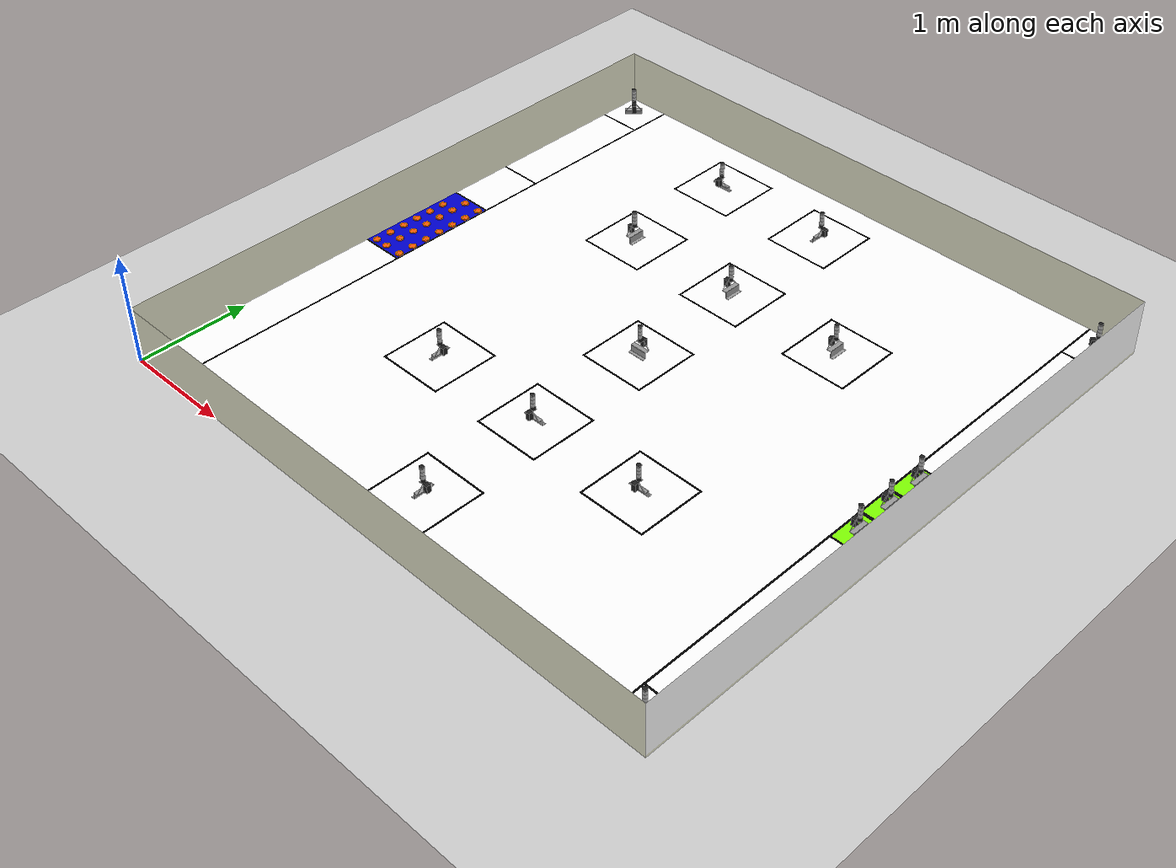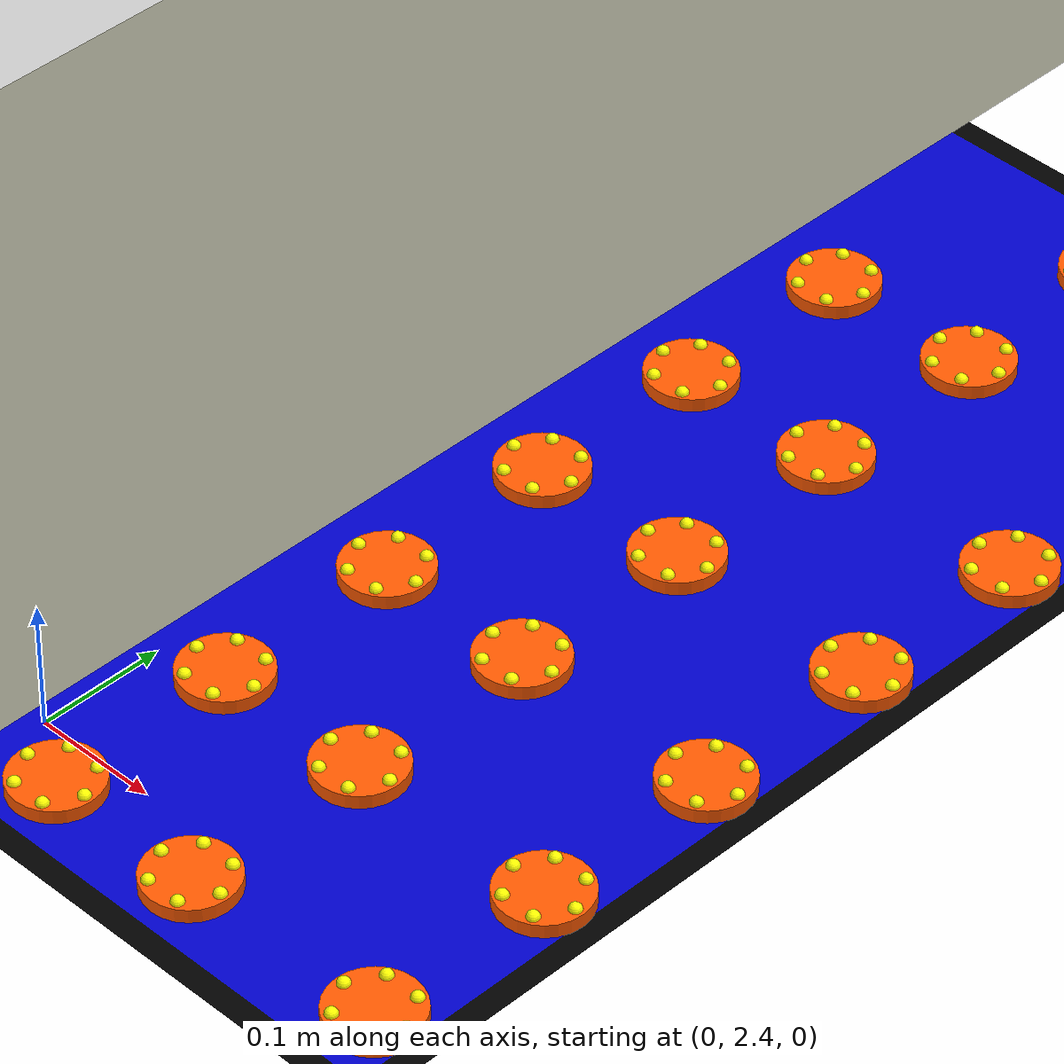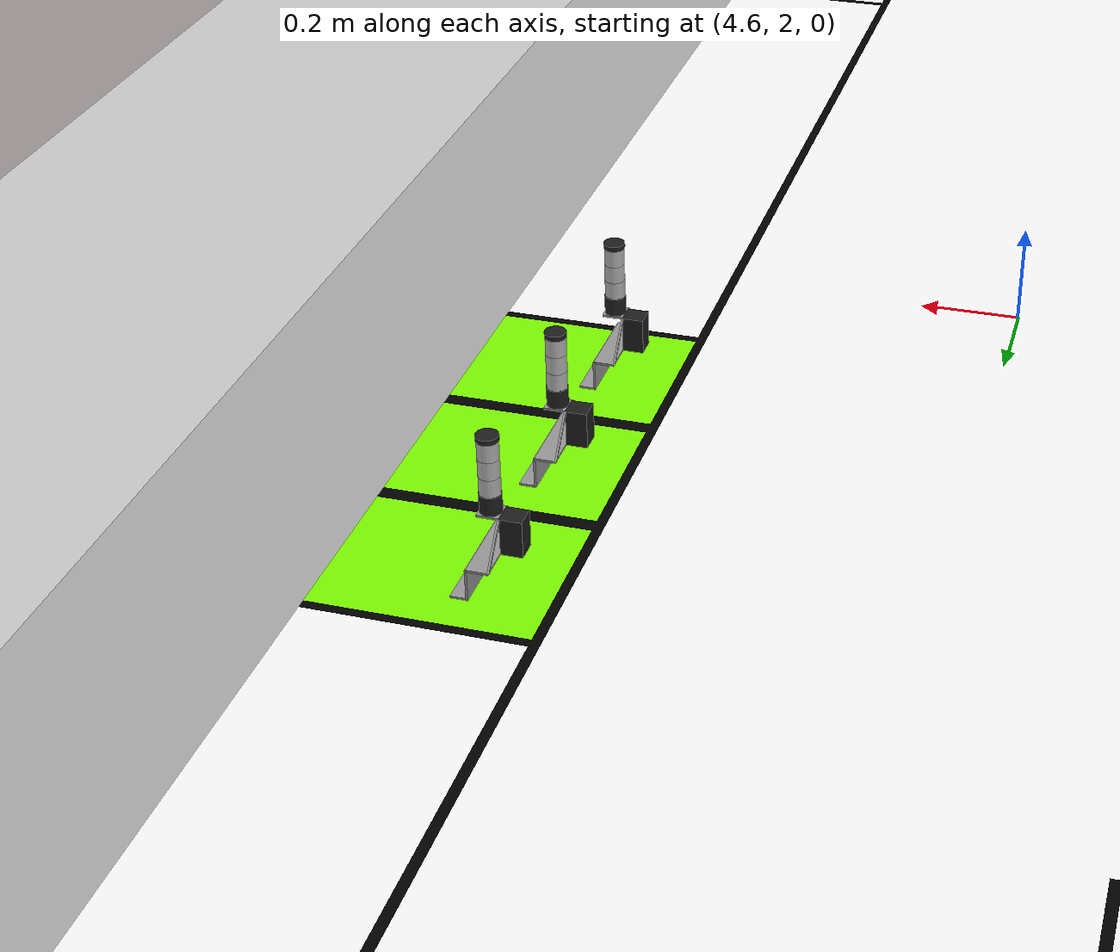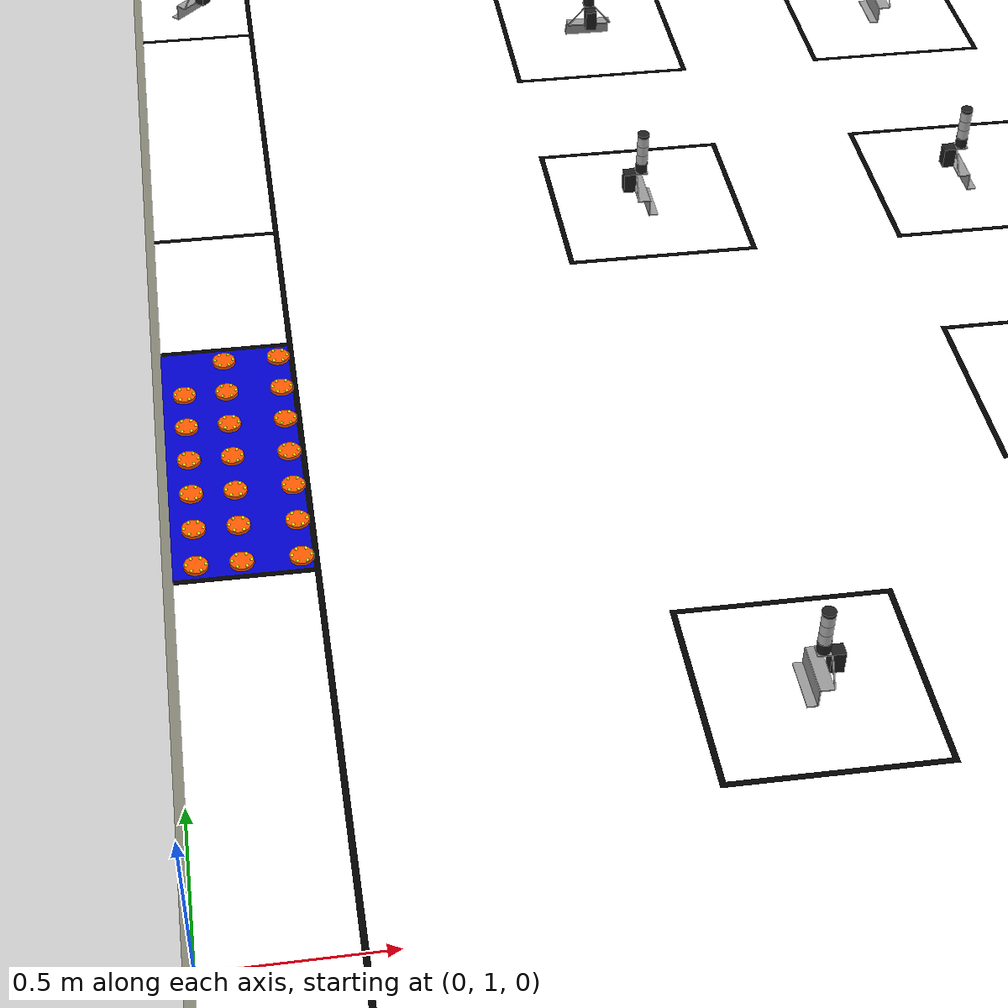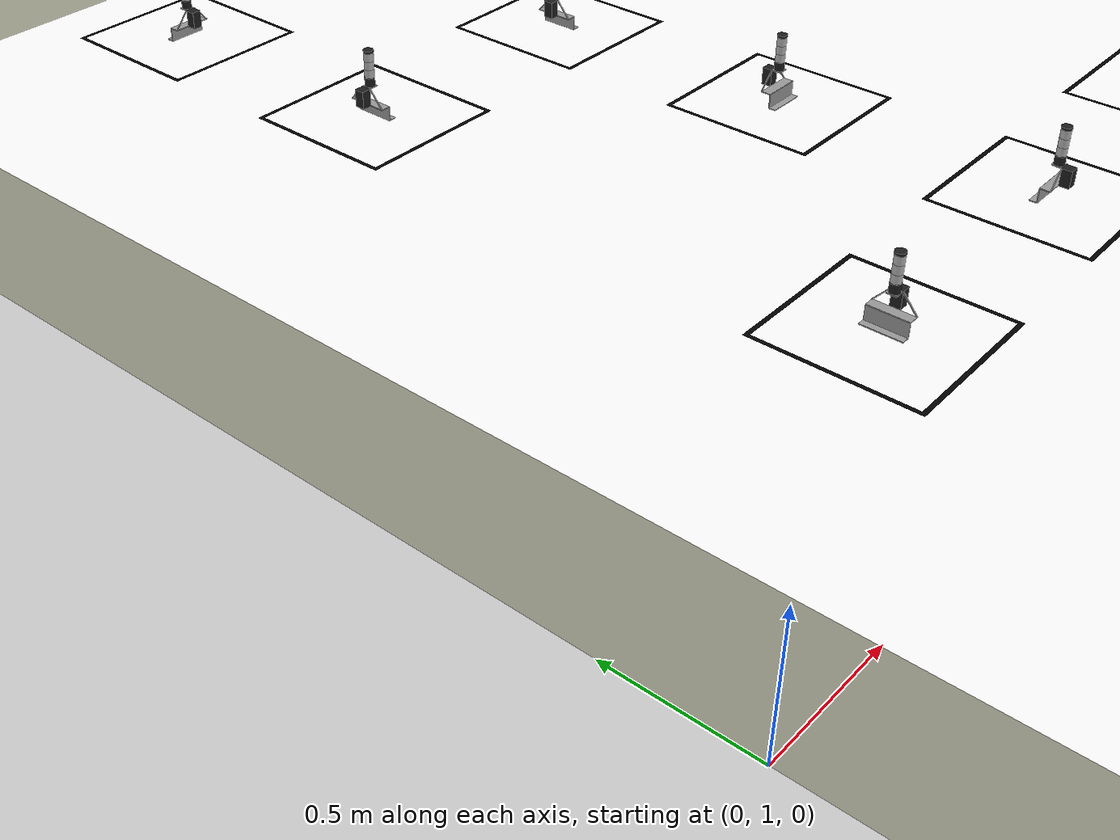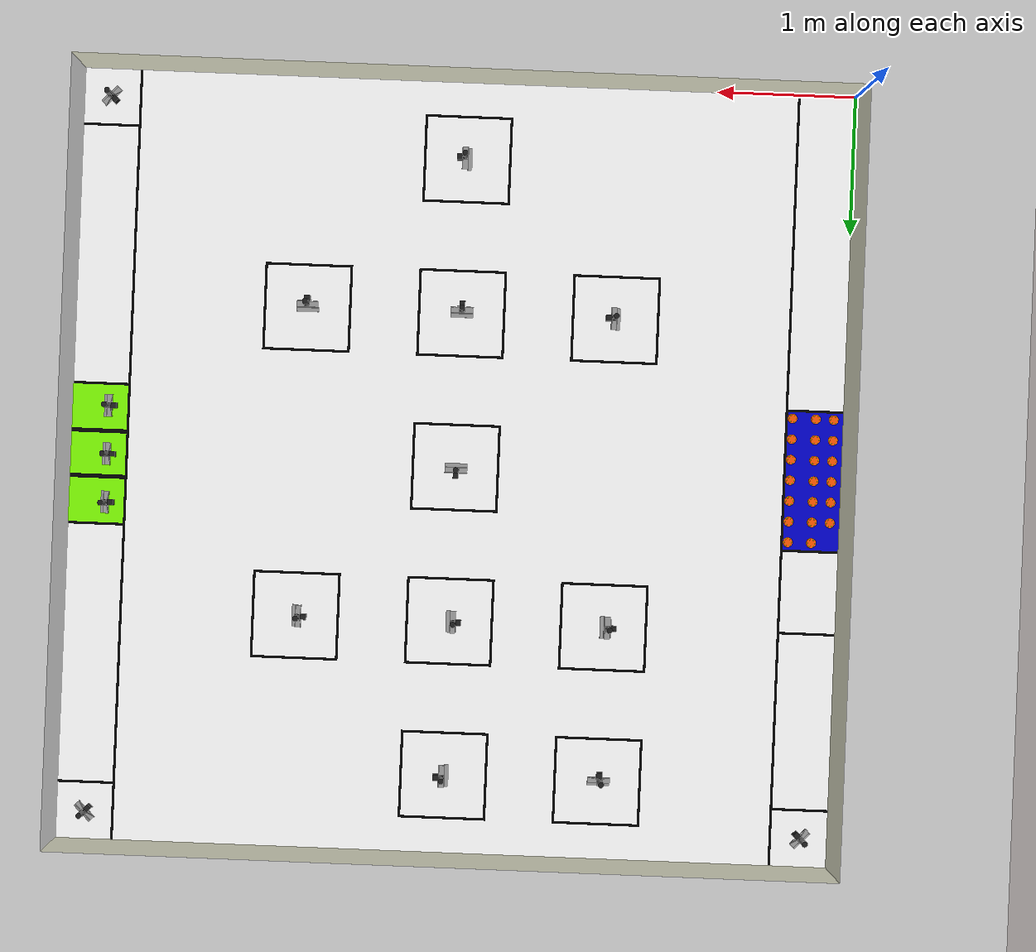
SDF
<sdf version="1.4">
 <world name="LLSF">
  <physics type="ode">
   <max_step_size>0.0015</max_step_size>
   <real_time_factor>1</real_time_factor>
   <real_time_update_rate>750</real_time_update_rate>
  </physics>
  <include><uri>model://ground_plane</uri></include>
  <include><uri>model://sun</uri></include>
  <include><uri>model://llsf_field_2013</uri></include>
  <include><name>Puck0</name><uri>model://puck</uri><pose>0.37 2.35 0 0 0 0</pose></include>
  <include><name>Puck1</name><uri>model://puck</uri><pose>0.37 2.50 0 0 0 0</pose></include>
  <include><name>Puck2</name><uri>model://puck</uri><pose>0.37 2.65 0 0 0 0</pose></include>
  <include><name>Puck3</name><uri>model://puck</uri><pose>0.37 2.80 0 0 0 0</pose></include>
  <include><name>Puck4</name><uri>model://puck</uri><pose>0.37 2.95 0 0 0 0</pose></include>
  <include><name>Puck5</name><uri>model://puck</uri><pose>0.37 3.10 0 0 0 0</pose></include>
  <include><name>Puck6</name><uri>model://puck</uri><pose>0.37 3.25 0 0 0 0</pose></include>
  <include><name>Puck7</name><uri>model://puck</uri><pose>0.2 2.35 0 0 0 0</pose></include>
  <include><name>Puck8</name><uri>model://puck</uri><pose>0.2 2.50 0 0 0 0</pose></include>
  <include><name>Puck9</name><uri>model://puck</uri><pose>0.2 2.65 0 0 0 0</pose></include>
  <include><name>Puck10</name><uri>model://puck</uri><pose>0.2 2.80 0 0 0 0</pose></include>
  <include><name>Puck11</name><uri>model://puck</uri><pose>0.2 2.95 0 0 0 0</pose></include>
  <include><name>Puck12</name><uri>model://puck</uri><pose>0.2 3.10 0 0 0 0</pose></include>
  <include><name>Puck13</name><uri>model://puck</uri><pose>0.2 3.25 0 0 0 0</pose></include>
  <include><name>Puck14</name><uri>model://puck</uri><pose>0.07 2.35 0 0 0 0</pose></include>
  <include><name>Puck15</name><uri>model://puck</uri><pose>0.07 2.50 0 0 0 0</pose></include>
  <include><name>Puck16</name><uri>model://puck</uri><pose>0.07 2.65 0 0 0 0</pose></include>
  <include><name>Puck17</name><uri>model://puck</uri><pose>0.07 2.80 0 0 0 0</pose></include>
  <include><name>Puck18</name><uri>model://puck</uri><pose>0.07 2.95 0 0 0 0</pose></include>
  <include><name>Puck19</name><uri>model://puck</uri><pose>0.07 3.10 0 0 0 0</pose></include>
  <plugin name="world" filename="libllsf.so"/>
 </world>
</sdf>

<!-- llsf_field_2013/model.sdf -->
<sdf version="1.4">
  <model name="llsf_field">
    <static>true</static>
    <link name="field_link">
      <visual name='visual'>
	<pose>5.6 0 0 0 0 1.57</pose>
	<geometry>
	  <mesh>
	    <uri>model://llsf_field/RobotinoFeld_leer.dae</uri>
	    <scale>1.0 1.0 1.0</scale>
	  </mesh>
	</geometry>
	<cast_shadows>false</cast_shadows>
      </visual>
      <collision name="collision_ground">
	<pose>2.8 2.8 0.01 0 0 0 </pose>
        <geometry>
          <box>
            <size>5.6 5.6 0.02</size>
          </box>
        </geometry>
        <surface>
          <friction>
            <ode>
              <mu>100</mu>
              <mu2>50</mu2>
            </ode>
          </friction>
        </surface>
      </collision>
      <collision name="collision0">
        <pose>2.8 0 0.25 0 0 0 </pose>
	<geometry>
          <box>
            <size>5.6 0.02 0.5</size>
          </box>
        </geometry>
        <surface>
          <friction>
            <ode>
              <mu>100</mu>
              <mu2>50</mu2>
            </ode>
          </friction>
        </surface>
      </collision>
      <collision name="collision1">
        <pose>0 2.8 0.25 0 0 0 </pose>
	<geometry>
          <box>
            <size>0.02 5.6 0.5</size>
          </box>
        </geometry>
        <surface>
          <friction>
            <ode>
              <mu>100</mu>
              <mu2>50</mu2>
            </ode>
          </friction>
        </surface>
      </collision>
      <collision name="collision2">
        <pose>5.6 2.8 0.25 0 0 0 </pose>
	<geometry>
          <box>
            <size>0.02 5.6 0.5</size>
          </box>
        </geometry>
        <surface>
          <friction>
            <ode>
              <mu>100</mu>
              <mu2>50</mu2>
            </ode>
          </friction>
        </surface>
      </collision>
      <collision name="collision3">
        <pose>2.8 5.6 0.25 0 0 0 </pose>
	<geometry>
          <box>
            <size>5.6 0.02 0.5</size>
          </box>
        </geometry>
        <surface>
          <friction>
            <ode>
              <mu>100</mu>
              <mu2>50</mu2>
            </ode>
          </friction>
        </surface>
      </collision>
    </link>

    <!-- Machines  -->

    <include>
      <name>M1</name>
      <uri>model://machine</uri>
      <pose>3.92 1.68 0.02 0 0 -1.57</pose>
    </include>
    <include>
      <name>M2</name>
      <uri>model://machine</uri>
      <pose>3.92 3.92 0.02 0 0 3.14</pose>
    </include>
    <include>
      <name>M3</name>
      <uri>model://machine</uri>
      <pose>2.8 0.56 0.02 0 0 0</pose>
    </include>
    <include>
      <name>M4</name>
      <uri>model://machine</uri>
      <pose>2.8 1.68 0.02 0 0 -1.57</pose>
    </include>
    <include>
      <name>M5</name>
      <uri>model://machine</uri>
      <pose>2.8 2.8 0.02 0 0 1.57</pose>
    </include>
    <include>
      <name>M6</name>
      <uri>model://machine</uri>
      <pose>2.8 3.92 0.02 0 0 3.14</pose>
    </include>
    <include>
      <name>M7</name>
      <uri>model://machine</uri>
      <pose>2.8 5.04 0.02 0 0 0</pose>
    </include>
    <include>
      <name>M8</name>
      <uri>model://machine</uri>
      <pose>1.68 1.68 0.02 0 0 0</pose>
    </include>
    <include>
      <name>M9</name>
      <uri>model://machine</uri>
      <pose>1.68 3.92 0.02 0 0 3.14</pose>
    </include>
    <include>
      <name>M10</name>
      <uri>model://machine</uri>
      <pose>1.68 5.04 0.02 0 0 -1.57</pose>
    </include>
    <include>
      <name>D1</name>
      <uri>model://machine</uri>
      <pose>5.34 3.15 0.02 0 0 3.14</pose>
    </include>
    <include>
      <name>D2</name>
      <uri>model://machine</uri>
      <pose>5.34 2.8 0.02 0 0 3.14</pose>
    </include>
    <include>
      <name>D3</name>
      <uri>model://machine</uri>
      <pose>5.34 2.45 0.02 0 0 3.14</pose>
    </include>
    <include>
      <name>R1</name>
      <uri>model://machine</uri>
      <pose>5.4 0.2 0.02 0 0 2.356</pose>
    </include>
    <include>
      <name>R2</name>
      <uri>model://machine</uri>
      <pose>0.2 5.4 0.02 0 0 -0.785</pose>
    </include>
    <include>
      <name>TST</name>
      <uri>model://machine</uri>
      <pose>5.4 5.4 0.02 0 0 -2.356</pose>
    </include>
  </model>
</sdf>

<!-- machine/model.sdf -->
<sdf version="1.4">
  <model name="machine">

    <!-- facing in x direction -->

    <static>true</static>
    <link name="machine_link">
      <collision name="ground_plate_collision">
        <pose>-0.015 0 0.002 0 0 0 </pose>
	<geometry>
          <box>
            <size>0.03 0.16 0.004</size>
          </box>
        </geometry>
      </collision>
      <visual name="ground_plate_visual">
        <pose>-0.015 0 0.002 0 0 0 </pose>
	<cast_shadows>false</cast_shadows>
        <geometry>
	  <box>
	    <size>0.03 0.16 0.004</size>
          </box>
        </geometry>
	<material>
	  <script>
	    <uri>file://media/materials/scripts/gazebo.material</uri>
	    <name>Gazebo/Grey</name>
	  </script>
	</material>
      </visual>
      <collision name="low_plate_collision">
        <pose>0 0 0.03 0 0 0 </pose>
	<geometry>
          <box>
            <size>0.004 0.16 0.06</size>
          </box>
        </geometry>
      </collision>
      <visual name="low_plate_visual">
        <pose>0 0 0.03 0 0 0 </pose>
	<cast_shadows>false</cast_shadows>
        <geometry>
	  <box>
	    <size>0.004 0.16 0.06</size>
          </box>
        </geometry>
	<material>
	  <script>
	    <uri>file://media/materials/scripts/gazebo.material</uri>
	    <name>Gazebo/Grey</name>
	  </script>
	</material>
      </visual>
      <collision name="middle_plate_collision">
        <pose>0.02 0 0.06 0 0 0 </pose>
	<geometry>
          <box>
            <size>0.04 0.16 0.004</size>
          </box>
        </geometry>
      </collision>
      <visual name="middle_plate_visual">
        <pose>0.02 0 0.06 0 0 0 </pose>
	<cast_shadows>false</cast_shadows>
        <geometry>
	  <box>
            <size>0.04 0.16 0.004</size>
          </box>
        </geometry>
	<material>
	  <script>
	    <uri>file://media/materials/scripts/gazebo.material</uri>
	    <name>Gazebo/Grey</name>
	  </script>
	</material>
      </visual>
      <collision name="uppest_plate_collision">
        <pose>0.02 0 0.13 0 0 0 </pose>
	<geometry>
          <box>
            <size>0.04 0.04 0.004</size>
          </box>
        </geometry>
      </collision>
      <visual name="uppest_plate_visual">
        <pose>0.02 0 0.13 0 0 0 </pose>
	<cast_shadows>false</cast_shadows>
        <geometry>
	  <box>
            <size>0.04 0.04 0.004</size>
          </box>
        </geometry>
	<material>
	  <script>
	    <uri>file://media/materials/scripts/gazebo.material</uri>
	    <name>Gazebo/Grey</name>
	  </script>
	</material>
      </visual>
    <!-- only two sticks, I don't have triangles -->
      <collision name="upper_plate_left_collision">
        <pose>0.04 -0.05 0.095 0.86 0 0 </pose>
	<geometry>
          <box>
            <size>0.004 0.092 0.004</size>
          </box>
        </geometry>
      </collision>
      <visual name="upper_plate_left_visual">
        <pose>0.04 -0.05 0.095 0.86 0 0 </pose>
	<cast_shadows>false</cast_shadows>
        <geometry>
	  <box>
	    <size>0.004 0.092 0.004</size>
          </box>
        </geometry>
	<material>
	  <script>
	    <uri>file://media/materials/scripts/gazebo.material</uri>
	    <name>Gazebo/Grey</name>
	  </script>
	</material>
      </visual>
      <collision name="upper_plate_right_collision">
        <pose>0.04 0.05 0.095 -0.86 0 0 </pose>
	<geometry>
          <box>
            <size>0.004 0.092 0.004</size>
          </box>
        </geometry>
      </collision>
      <visual name="upper_plate_right_visual">
        <pose>0.04 0.05 0.095 -0.86 0 0 </pose>
	<cast_shadows>false</cast_shadows>
        <geometry>
	  <box>
	    <size>0.004 0.092 0.004</size>
          </box>
        </geometry>
	<material>
	  <script>
	    <uri>file://media/materials/scripts/gazebo.material</uri>
	    <name>Gazebo/Grey</name>
	  </script>
	</material>
      </visual>
    <!-- no cable -->
      <collision name="rfid_collision">
        <pose>0.06 0 0.095 0 0 0 </pose>
	<geometry>
          <box>
            <size>0.04 0.04 0.04</size>
          </box>
        </geometry>
      </collision>
      <visual name="rfid_visual">
        <pose>0.06 0 0.095 0 0 0 </pose>
	<cast_shadows>false</cast_shadows>
        <geometry>
	  <box>
            <size>0.04 0.04 0.07</size>
          </box>
        </geometry>
	<material>
	  <script>
            <uri>file://media/materials/scripts/gazebo.material</uri>
            <name>Gazebo/Black</name>
	  </script>
	</material>
      </visual>
      <collision name="trafficlight_collision">
        <pose>0.02 0 0.205 0 0 0 </pose>
	<geometry>
          <cylinder>
	    <radius>0.02</radius>
	    <length>0.15</length>
          </cylinder>
        </geometry>
      </collision>
      <visual name="upper_black_border">
        <pose>0.02 0 0.275 0 0 0 </pose>
	<cast_shadows>false</cast_shadows>
        <geometry>
          <cylinder>
	    <radius>0.02</radius>
	    <length>0.01</length>
          </cylinder>
        </geometry>
	<material>
	  <script>
            <uri>file://media/materials/scripts/gazebo.material</uri>
            <name>Gazebo/Black</name>
	  </script>
	</material>
      </visual>
      <visual name="red">
        <pose>0.02 0 0.253 0 0 0 </pose>
	<cast_shadows>false</cast_shadows>
        <geometry>
          <cylinder>
	    <radius>0.019</radius>
	    <length>0.034</length>
          </cylinder>
        </geometry>
	<material>
	  <ambient>0.8 0 0 0.8</ambient>
	  <diffuse>0.8 0.0 0.0 0.8</diffuse>
	  <emissive>0.0 0.0 0.0 0.0</emissive>
	</material>
	<transparency>0.9</transparency>
      </visual>
      <visual name="yellow">
        <pose>0.02 0 0.219 0 0 0 </pose>
	<cast_shadows>false</cast_shadows>
        <geometry>
          <cylinder>
	    <radius>0.019</radius>
	    <length>0.034</length>
          </cylinder>
        </geometry>
	<material>
	  <ambient>0.9 0.7 0 0.8</ambient>
	  <diffuse>0.9 0.7 0.0 0.8</diffuse>
	  <emissive>0.0 0.0 0.0 0.0</emissive>
	</material>
	<transparency>0.9</transparency>
      </visual>
      <visual name="green">
        <pose>0.02 0 0.185 0 0 0 </pose>
	<cast_shadows>false</cast_shadows>
        <geometry>
          <cylinder>
	    <radius>0.019</radius>
	    <length>0.034</length>
          </cylinder>
        </geometry>
	<material>
	  <ambient>0.0 0.8 0 0.8</ambient>
	  <diffuse>0.0 0.8 0.0 0.8</diffuse>
	  <emissive>0.0 0.0 0.0 0.0</emissive>
	</material>
	<transparency>0.9</transparency>
      </visual>
      <visual name="redon">
        <pose>0.02 0 0.253 0 0 0 </pose>
	<cast_shadows>false</cast_shadows>
        <geometry>
          <cylinder>
	    <radius>0.019</radius>
	    <length>0.034</length>
          </cylinder>
        </geometry>
      </visual>
      <visual name="yellowon">
        <pose>0.02 0 0.219 0 0 0 </pose>
	<cast_shadows>false</cast_shadows>
        <geometry>
          <cylinder>
	    <radius>0.019</radius>
	    <length>0.034</length>
          </cylinder>
        </geometry>
      </visual>
      <visual name="greenon">
        <pose>0.02 0 0.185 0 0 0 </pose>
	<cast_shadows>false</cast_shadows>
        <geometry>
          <cylinder>
	    <radius>0.019</radius>
	    <length>0.034</length>
          </cylinder>
        </geometry>
     </visual>
      <visual name="lower_black_border">
        <pose>0.02 0 0.149 0 0 0 </pose>
	<cast_shadows>false</cast_shadows>
        <geometry>
          <cylinder>
	    <radius>0.02</radius>
	    <length>0.038</length>
          </cylinder>
        </geometry>
	<material>
	  <script>
            <uri>file://media/materials/scripts/gazebo.material</uri>
            <name>Gazebo/Black</name>
	  </script>
	</material>
      </visual>
    </link>
  </model>
</sdf>

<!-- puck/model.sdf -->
<sdf version="1.4">
  <model name="puck">
    <static>false</static>
    <link name="cylinder">
      <pose>0 0 0.015 0 0 0 </pose>
      <gravity>true</gravity>
      <inertial>
        <mass>50</mass>
      </inertial>
      <collision name="cylinder_collision">
        <geometry>
          <cylinder>
            <radius>0.0375</radius>
	    <length>0.03</length>
          </cylinder>
        </geometry>
	<surface>
	  <friction>
	    <ode>
	      <mu>1.0</mu>
              <mu2>1.0</mu2>
              <slip1>0.0</slip1>
              <slip2>0.0</slip2>
	    </ode>
	  </friction>
	</surface>
      </collision>
      <collision name="top_collision">
        <geometry>
          <box>
	    <size>0.053 0.053 0.03</size>
          </box>
        </geometry>
      </collision>
      <visual name="cylinder_visual">
        <cast_shadows>false</cast_shadows>
        <geometry>
          <cylinder>
            <radius>0.035</radius>
	    <length>0.03</length>
          </cylinder>
        </geometry>
	<material>
	  <ambient>1.0 0.35 0.0 1</ambient>
	  <diffuse>1.0 0.35 0.0 1</diffuse>
	</material>
      </visual>
      <visual name="noppel_up_0">
	<pose>0.028 0 0.015 0 0 0 </pose>
        <cast_shadows>false</cast_shadows>
        <geometry>
          <sphere>
            <radius>0.005</radius>
          </sphere>
        </geometry>
	<material>
	  <ambient>1.0 1.0 0.0 1</ambient>
	  <diffuse>1.0 1.0 0.0 1</diffuse>
	</material>
      </visual>
      <visual name="noppel_up_1">
	<pose>0.014 0.024 0.015 0 0 0 </pose>
        <cast_shadows>false</cast_shadows>
        <geometry>
          <sphere>
            <radius>0.005</radius>
          </sphere>
        </geometry>
	<material>
	  <ambient>1.0 1.0 0.0 1</ambient>
	  <diffuse>1.0 1.0 0.0 1</diffuse>
	</material>
      </visual>
      <visual name="noppel_up_2">
	<pose>-0.014 0.024 0.015 0 0 0 </pose>
        <cast_shadows>false</cast_shadows>
        <geometry>
          <sphere>
            <radius>0.005</radius>
          </sphere>
        </geometry>
	<material>
	  <ambient>1.0 1.0 0.0 1</ambient>
	  <diffuse>1.0 1.0 0.0 1</diffuse>
	</material>
      </visual>
      <visual name="noppel_up_3">
	<pose>-0.028 0 0.015 0 0 0 </pose>
        <cast_shadows>false</cast_shadows>
        <geometry>
          <sphere>
            <radius>0.005</radius>
          </sphere>
        </geometry>
	<material>
	  <ambient>1.0 1.0 0.0 1</ambient>
	  <diffuse>1.0 1.0 0.0 1</diffuse>
	</material>
      </visual>
      <visual name="noppel_up_4">
	<pose>-0.014 -0.024 0.015 0 0 0 </pose>
        <cast_shadows>false</cast_shadows>
        <geometry>
          <sphere>
            <radius>0.005</radius>
          </sphere>
        </geometry>
	<material>
	  <ambient>1.0 1.0 0.0 1</ambient>
	  <diffuse>1.0 1.0 0.0 1</diffuse>
	</material>
      </visual>
      <visual name="noppel_up_5">
	<pose>0.014 -0.024 0.015 0 0 0 </pose>
        <cast_shadows>false</cast_shadows>
        <geometry>
          <sphere>
            <radius>0.005</radius>
          </sphere>
        </geometry>
	<material>
	  <ambient>1.0 1.0 0.0 1</ambient>
	  <diffuse>1.0 1.0 0.0 1</diffuse>
	</material>
      </visual>
      <visual name="noppel_down_0">
	<pose>0.028 0 -0.015 0 0 0 </pose>
        <cast_shadows>false</cast_shadows>
        <geometry>
          <sphere>
            <radius>0.005</radius>
          </sphere>
        </geometry>
	<material>
	  <ambient>1.0 1.0 0.0 1</ambient>
	  <diffuse>1.0 1.0 0.0 1</diffuse>
	</material>
      </visual>
      <visual name="noppel_down_1">
	<pose>0.014 0.024 -0.015 0 0 0 </pose>
        <cast_shadows>false</cast_shadows>
        <geometry>
          <sphere>
            <radius>0.005</radius>
          </sphere>
        </geometry>
	<material>
	  <ambient>1.0 1.0 0.0 1</ambient>
	  <diffuse>1.0 1.0 0.0 1</diffuse>
	</material>
      </visual>
      <visual name="noppel_down_2">
	<pose>-0.014 0.024 -0.015 0 0 0 </pose>
        <cast_shadows>false</cast_shadows>
        <geometry>
          <sphere>
            <radius>0.005</radius>
          </sphere>
        </geometry>
	<material>
	  <ambient>1.0 1.0 0.0 1</ambient>
	  <diffuse>1.0 1.0 0.0 1</diffuse>
	</material>
      </visual>
      <visual name="noppel_down_3">
	<pose>-0.028 0 -0.015 0 0 0 </pose>
        <cast_shadows>false</cast_shadows>
        <geometry>
          <sphere>
            <radius>0.005</radius>
          </sphere>
        </geometry>
	<material>
	  <ambient>1.0 1.0 0.0 1</ambient>
	  <diffuse>1.0 1.0 0.0 1</diffuse>
	</material>
      </visual>
      <visual name="noppel_down_4">
	<pose>-0.014 -0.024 -0.015 0 0 0 </pose>
        <cast_shadows>false</cast_shadows>
        <geometry>
          <sphere>
            <radius>0.005</radius>
          </sphere>
        </geometry>
	<material>
	  <ambient>1.0 1.0 0.0 1</ambient>
	  <diffuse>1.0 1.0 0.0 1</diffuse>
	</material>
      </visual>
      <visual name="noppel_down_5">
	<pose>0.014 -0.024 -0.015 0 0 0 </pose>
        <cast_shadows>false</cast_shadows>
        <geometry>
          <sphere>
            <radius>0.005</radius>
          </sphere>
        </geometry>
	<material>
	  <ambient>1.0 1.0 0.0 1</ambient>
	  <diffuse>1.0 1.0 0.0 1</diffuse>
	</material>
      </visual>
    </link>
  </model>
</sdf>
